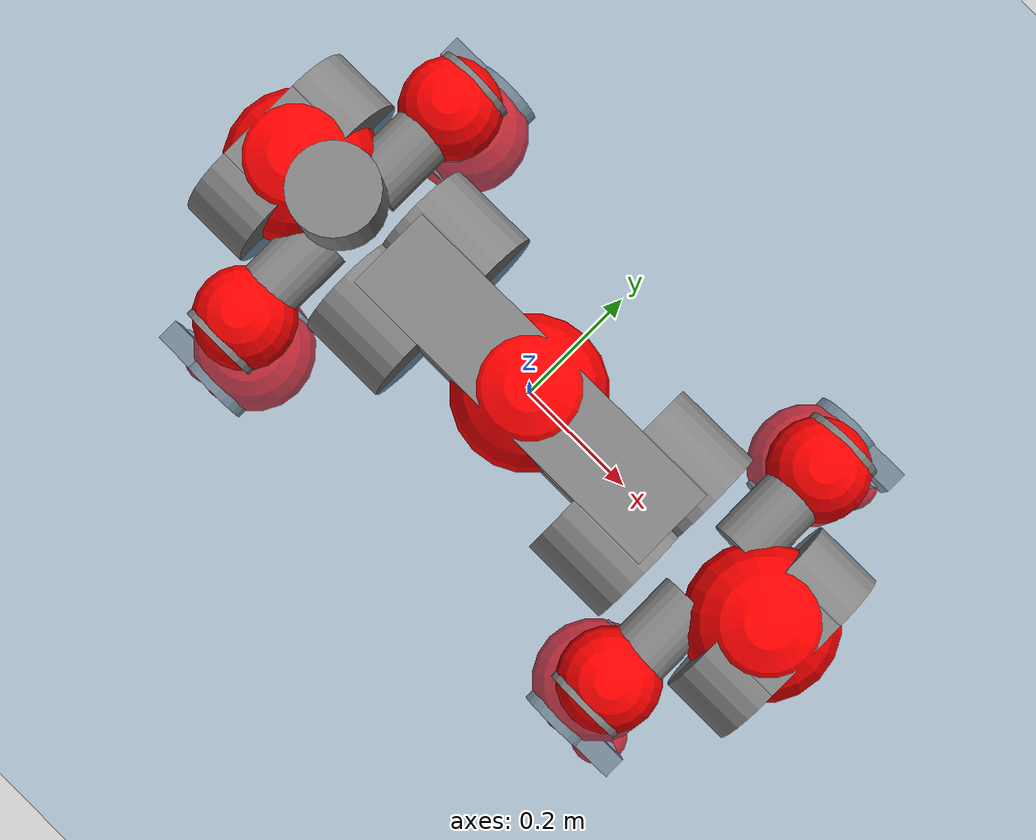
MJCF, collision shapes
<mujoco model="anymal_c">
  <compiler angle="radian" assetdir="assets" balanceinertia="true" inertiafromgeom="false"/>

  <option timestep="0.005" density="1.2" viscosity="2e-05"/>

  <size nkey="1"/>

  <visual>
    <quality shadowsize="8192"/>
    <map shadowclip="0.5"/>
  </visual>

  <default>
    <default class="/">
      <material specular="0" shininess="0.25"/>
      <geom contype="0" conaffinity="0" group="1" solref="-1000 -80"/>
      <site size="0.01 0.005 0.005" group="5"/>
      <general forcelimited="true" forcerange="-80 80" biastype="affine" gainprm="80" biasprm="0 -80 -2"/>
      <default class="anymal_c">
        <joint armature="0.01" damping="0.01" frictionloss="0.1"/>
        <default class="visual">
          <geom type="mesh" group="2"/>
          <default class="visual_zflip"/>
        </default>
        <default class="collision">
          <geom type="cylinder" group="3"/>
          <default class="foot">
            <geom size="0.03 0 0" type="sphere" condim="6" priority="1" friction="0.8 0.02 0.01" solimp="0.015 1 0.03"/>
          </default>
        </default>
      </default>
      <default class="reward_collision_sphere">
        <geom group="5" rgba="1 0 0 1"/>
      </default>
    </default>
  </default>

  <asset>
    <texture type="skybox" colorspace="auto" name="//unnamed_texture_0" builtin="gradient" rgb1="0.95 0.95 0.95" rgb2="0.95 0.95 0.95" width="100" height="600"/>
    <texture type="2d" colorspace="auto" name="texplane" builtin="checker" rgb1="0.345 0.575 0.748" rgb2="0.345 0.575 0.748" markrgb="1 1 1" width="512" height="512"/>
    <texture type="2d" colorspace="linear" name="base" file="base.png"/>
    <texture type="2d" colorspace="linear" name="top_shell" file="top_shell.png"/>
    <texture type="2d" colorspace="linear" name="bottom_shell" file="bottom_shell.png"/>
    <texture type="2d" colorspace="linear" name="remote" file="remote.png"/>
    <texture type="2d" colorspace="linear" name="hatch" file="hatch.png"/>
    <texture type="2d" colorspace="linear" name="handle" file="handle.png"/>
    <texture type="2d" colorspace="linear" name="face" file="face.png"/>
    <texture type="2d" colorspace="linear" name="battery" file="battery.png"/>
    <texture type="2d" colorspace="linear" name="lidar_cage" file="lidar_cage.png"/>
    <texture type="2d" colorspace="linear" name="depth_camera" file="depth_camera.png"/>
    <texture type="2d" colorspace="linear" name="wide_angle_camera" file="wide_angle_camera.png"/>
    <texture type="2d" colorspace="linear" name="lidar" file="lidar.png"/>
    <texture type="2d" colorspace="linear" name="drive" file="drive.png"/>
    <texture type="2d" colorspace="linear" name="hip_l" file="hip_l.png"/>
    <texture type="2d" colorspace="linear" name="shank_l" file="shank_l.png"/>
    <texture type="2d" colorspace="linear" name="foot" file="foot.png"/>
    <texture type="2d" colorspace="linear" name="thigh" file="thigh.png"/>
    <texture type="2d" colorspace="linear" name="shank_r" file="shank_r.png"/>
    <texture type="2d" colorspace="linear" name="hip_r" file="hip_r.png"/>
    <material name="MatPlane" class="/" texture="texplane" texuniform="true" texrepeat="2 2" specular="0.9" shininess="0.5"/>
    <material name="black_plastic" class="/" rgba="0.007 0.007 0.007 1"/>
    <material name="green" class="/" rgba="0.052 0.178 0.033 1"/>
    <material name="red" class="/" rgba="0.178 0.006 0.005 1"/>
    <material name="yellow" class="/" rgba="0.178 0.119 0.006 1"/>
    <material name="lwl" class="/" rgba="0.8 0.8 0.8 1"/>
    <material name="base" class="/" texture="base"/>
    <material name="top_shell" class="/" texture="top_shell"/>
    <material name="bottom_shell" class="/" texture="bottom_shell"/>
    <material name="hip_l" class="/" texture="hip_l"/>
    <material name="thigh" class="/" texture="thigh"/>
    <material name="shank_l" class="/" texture="shank_l"/>
    <material name="foot" class="/" texture="foot"/>
    <material name="hip_r" class="/" texture="hip_r"/>
    <material name="shank" class="/" texture="shank_r"/>
    <material name="hatch" class="/" texture="hatch"/>
    <material name="remote" class="/" texture="remote"/>
    <material name="handle" class="/" texture="handle"/>
    <material name="face" class="/" texture="face"/>
    <material name="depth_camera" class="/" texture="depth_camera"/>
    <material name="wide_angle_camera" class="/" texture="wide_angle_camera"/>
    <material name="battery" class="/" texture="battery"/>
    <material name="lidar_cage" class="/" texture="lidar_cage"/>
    <material name="lidar" class="/" texture="lidar"/>
    <material name="drive" class="/" texture="drive"/>
    <mesh name="base_0" class="/" file="base_0.obj"/>
    <mesh name="base_1" class="/" file="base_1.obj"/>
    <mesh name="base_2" class="/" file="base_2.obj"/>
    <mesh name="base_3" class="/" file="base_3.obj"/>
    <mesh name="base_4" class="/" file="base_4.obj"/>
    <mesh name="base_5" class="/" file="base_5.obj"/>
    <mesh name="top_shell" class="/" file="top_shell.obj"/>
    <mesh name="bottom_shell" class="/" file="bottom_shell.obj"/>
    <mesh name="remote" class="/" file="remote.obj"/>
    <mesh name="handle" class="/" file="handle.obj"/>
    <mesh name="face" class="/" file="face.obj"/>
    <mesh name="wide_angle_camera" class="/" file="wide_angle_camera.obj"/>
    <mesh name="depth_camera" class="/" file="depth_camera.obj"/>
    <mesh name="battery" class="/" file="battery.obj"/>
    <mesh name="lidar_cage" class="/" file="lidar_cage.obj"/>
    <mesh name="lidar" class="/" file="lidar.obj"/>
    <mesh name="drive" class="/" file="drive.obj"/>
    <mesh name="hip_l" class="/" file="hip_l.obj"/>
    <mesh name="thigh" class="/" file="thigh.obj"/>
    <mesh name="shank_l" class="/" file="shank_l.obj"/>
    <mesh name="foot" class="/" file="foot.obj"/>
    <mesh name="hip_r" class="/" file="hip_r.obj"/>
    <mesh name="hatch" class="/" file="hatch.obj"/>
    <mesh name="shank_r" class="/" file="shank_r.obj"/>
  </asset>

  <worldbody>
    <geom name="floor" class="/" size="100 100 0.125" type="plane" group="0" material="MatPlane"/>
    <light name="toplight_shadow" class="/" pos="0 0 5" dir="0.0990148 0.0990148 -0.990148" type="directional" ambient="0.04 0.04 0.04" diffuse="0.55 0.55 0.55" specular="0.12 0.12 0.12"/>
    <light name="toplight_fill" class="/" pos="0 0 5" dir="0.0990148 0.0990148 -0.990148" type="directional" castshadow="false" ambient="0.04 0.04 0.04" diffuse="0.3 0.3 0.3" specular="0.08 0.08 0.08"/>
    <body name="trunk" childclass="anymal_c" pos="0.000318018 -0.000134445 0.00124348" quat="1 0.000171375 -5.94135e-05 -0.000163461">
      <inertial pos="0.00378224 -0.00462742 0.0433672" quat="0.501222 0.499861 0.499895 0.49902" mass="20.8863" diaginertia="0.957796 0.871578 0.13174"/>
      <joint name="//unnamed_joint_0" type="free" armature="0" damping="0" frictionloss="0"/>
      <geom name="//unnamed_geom_1" class="visual" material="green" mesh="base_0"/>
      <geom name="//unnamed_geom_2" class="visual" material="yellow" mesh="base_1"/>
      <geom name="//unnamed_geom_3" class="visual" material="red" mesh="base_2"/>
      <geom name="//unnamed_geom_4" class="visual" material="black_plastic" mesh="base_3"/>
      <geom name="//unnamed_geom_5" class="visual" material="lwl" mesh="base_4"/>
      <geom name="//unnamed_geom_6" class="visual" material="base" mesh="base_5"/>
      <geom name="trunk_1" class="collision" size="0.296946 0.0716767 0.0921557" type="box"/>
      <geom name="trunk_2" class="collision" size="0.0921557 0.0742365" pos="0.238329 0.0747212 0" quat="0.707107 0 0.707107 0"/>
      <geom name="trunk_3" class="collision" size="0.0921557 0.0742365" pos="-0.238329 0.0747212 0" quat="0.707107 0 0.707107 0"/>
      <geom name="trunk_4" class="collision" size="0.0921557 0.0742365" pos="0.238329 -0.0747212 0" quat="0.707107 0 0.707107 0"/>
      <geom name="trunk_5" class="collision" size="0.0921557 0.0742365" pos="-0.238329 -0.0747212 0" quat="0.707107 0 0.707107 0"/>
      <geom name="//unnamed_geom_12" class="visual" material="top_shell" mesh="top_shell"/>
      <geom name="//unnamed_geom_13" class="visual" material="bottom_shell" mesh="bottom_shell"/>
      <geom name="//unnamed_geom_14" class="visual" material="remote" mesh="remote"/>
      <geom name="//unnamed_geom_15" class="visual" material="handle" mesh="handle"/>
      <geom name="//unnamed_geom_16" class="visual" pos="0.454194 0 0" quat="1 0 0 0" material="face" mesh="face"/>
      <geom name="trunk_6" class="collision" size="0.0563174 0.0716767 0.0921557" pos="0.514461 0 0" type="box"/>
      <geom name="//unnamed_geom_18" class="collision" size="0.0921557 0.0563174" pos="0.514461 0.0747212 0" quat="0.707107 0 0.707107 0"/>
      <geom name="//unnamed_geom_19" class="collision" size="0.0921557 0.0563174" pos="0.514461 -0.0747212 0" quat="0.707107 0 0.707107 0"/>
      <geom name="//unnamed_geom_20" class="visual" pos="0.505852 0 -0.0251104" quat="0.965926 0 0.258819 0" material="depth_camera" mesh="depth_camera"/>
      <geom name="//unnamed_geom_21" class="visual" pos="0.562127 0 0.0136025" material="wide_angle_camera" mesh="wide_angle_camera"/>
      <geom name="//unnamed_geom_22" class="visual_zflip" pos="-0.454194 0 0" quat="0 0 0 1" material="face" mesh="face"/>
      <geom name="trunk_7" class="collision" size="0.0563174 0.0716767 0.0921557" pos="-0.514461 0 0" quat="0 0 0 1" type="box"/>
      <geom name="//unnamed_geom_24" class="collision" size="0.0921557 0.0563174" pos="-0.514461 -0.0747212 0" quat="0 -0.707107 0 0.707107"/>
      <geom name="//unnamed_geom_25" class="collision" size="0.0921557 0.0563174" pos="-0.514461 0.0747212 0" quat="0 -0.707107 0 0.707107"/>
      <geom name="//unnamed_geom_26" class="visual" pos="-0.505852 0 -0.0251104" quat="0 -0.258819 0 0.965926" material="depth_camera" mesh="depth_camera"/>
      <geom name="//unnamed_geom_27" class="visual_zflip" pos="-0.562127 0 0.0136025" quat="0 0 0 1" material="wide_angle_camera" mesh="wide_angle_camera"/>
      <geom name="//unnamed_geom_28" class="visual" material="battery" mesh="battery"/>
      <geom name="//unnamed_geom_29" class="visual" pos="0 0.0812375 0.0278183" quat="0.683013 -0.183013 0.183013 0.683013" material="depth_camera" mesh="depth_camera"/>
      <geom name="//unnamed_geom_30" class="visual" pos="0 -0.0812375 0.0278183" quat="0.683013 0.183013 0.183013 -0.683013" material="depth_camera" mesh="depth_camera"/>
      <geom name="//unnamed_geom_31" class="visual" pos="-0.398858 0 0.0667856" quat="1 0 0 0" material="lidar_cage" mesh="lidar_cage"/>
      <geom name="trunk_8" class="collision" size="0.0716767 0.0614371" pos="-0.398858 0 0.121304"/>
      <geom name="//unnamed_geom_33" class="visual" pos="-0.398858 -1.11257e-05 0.12921" quat="0.707107 0 0 -0.707107" material="lidar" mesh="lidar"/>
      <geom name="//unnamed_geom_34" class="visual" pos="0.32862 0.110958 2.73928e-09" quat="0.258819 0.965926 0 0" material="drive" mesh="drive"/>
      <geom name="//unnamed_geom_35" class="visual" pos="0.32862 -0.110958 -2.73928e-09" quat="0.258819 -0.965926 0 0" material="drive" mesh="drive"/>
      <geom name="//unnamed_geom_36" class="visual" pos="-0.32862 0.110958 -2.73928e-09" quat="0 0 0.965926 -0.258819" material="drive" mesh="drive"/>
      <geom name="//unnamed_geom_37" class="visual" pos="-0.32862 -0.110958 2.73928e-09" quat="0 0 -0.965926 -0.258819" material="drive" mesh="drive"/>
      <geom name="//unnamed_geom_38" class="visual" pos="0.127109 0 0.0663313" quat="1 0 0 0" material="hatch" mesh="hatch"/>
      <geom name="//unnamed_geom_39" class="reward_collision_sphere" size="0.122874"/>
      <geom name="//unnamed_geom_40" class="reward_collision_sphere" size="0.122874" pos="0.493094 0 0"/>
      <geom name="//unnamed_geom_41" class="reward_collision_sphere" size="0.122874" pos="-0.493094 0 0"/>
      <site name="imu" pos="0.282331 0.00708188 0.0508404" size="0.0102395"/>
      <camera name="track" pos="0 -2.13489 0" quat="0.707107 0.707107 0 0" mode="trackcom"/>
      <camera name="ego_camera" pos="0.493094 0 -0.0363459" quat="-0.5 -0.5 0.5 0.5"/>
      <body name="LF_HIP" pos="0.32883 0.111471 0.00233637" quat="0.259229 0.965815 -0.000673075 0.00096513">
        <inertial pos="0.0652677 -0.0163028 -0.00808154" quat="-0.135513 0.713997 -0.138621 0.672777" mass="2.81666" diaginertia="0.00902497 0.00658231 0.00198558"/>
        <joint name="LF_HAA" pos="0 0 0" axis="0.999993 0.00314591 0.00184514" stiffness="3.77681e-05" range="-0.745927 0.480553" armature="0.0101298" damping="0.0101168" frictionloss="0.116391"/>
        <geom name="//unnamed_geom_42" class="visual" pos="0 0.000161139 -2.6467e-05" quat="0.258819 -0.965926 0 0" material="hip_l" mesh="hip_l"/>
        <geom name="//unnamed_geom_43" class="visual" pos="0.0656363 -0.079103 -0.0444956" quat="0.183013 -0.683013 0.683013 0.183013" material="drive" mesh="drive"/>
        <geom name="//unnamed_geom_44" class="collision" size="0.0511976 0.0716767" pos="0.0656363 -0.0127664 -0.00627421" quat="-0.353553 -0.612372 0.612372 -0.353553"/>
        <body name="LF_THIGH" pos="0.0659383 -0.0802355 -0.0372982" quat="0.182572 -0.682838 0.683245 0.183238">
          <inertial pos="0.0336109 0.000821243 -0.223685" quat="0.993129 -0.00376791 -0.0781323 0.0870409" mass="3.54609" diaginertia="0.0471838 0.0421542 0.00288739"/>
          <joint name="LF_HFE" pos="0 0 0" axis="0.999988 -0.00170622 0.00454259" range="-3.12804 3.16606" armature="0.0113099" damping="0.00941962" frictionloss="0.111982"/>
          <geom name="//unnamed_geom_45" class="visual" pos="0.000563432 8.87836e-07 0" quat="0.707107 0 0 -0.707107" material="thigh" mesh="thigh"/>
          <geom name="//unnamed_geom_46" class="collision" size="0.0665569 0.0409581" pos="0.0438306 0 0" quat="0.5 0.5 -0.5 -0.5"/>
          <geom name="//unnamed_geom_47" class="collision" size="0.0383982 0.0307186 0.144699" pos="0.0328729 0 -0.128405" quat="0.707107 0 0 -0.707107" type="box"/>
          <geom name="//unnamed_geom_48" class="visual" pos="0.109905 0 -0.258965" quat="1 0 0 0" material="drive" mesh="drive"/>
          <geom name="//unnamed_geom_49" class="collision" size="0.0511976 0.0716767" pos="0.0332017 0 -0.258965" quat="0.707107 0 0.707107 0"/>
          <geom name="//unnamed_geom_50" class="reward_collision_sphere" size="0.0819162" pos="0.0273941 0 0"/>
          <body name="LF_SHANK" pos="0.108767 -0.00103238 -0.260641" quat="0.999998 0.00164951 -0.000533422 -0.00116023">
            <inertial pos="0.0046054 -0.0651551 -0.0726145" quat="0.992958 -0.11602 -0.00115168 -0.0239452" mass="0.629851" diaginertia="0.0160014 0.0132354 0.000719725"/>
            <joint name="LF_KFE" pos="0 0 0" axis="0.999945 0.00415544 -0.00963218" range="-3.09726 3.09208" armature="0.00964422" damping="0" frictionloss="0.108886"/>
            <geom name="//unnamed_geom_51" class="visual" pos="0.000183723 0.000979619 0" quat="0.707107 0 0 -0.707107" material="shank_l" mesh="shank_l"/>
            <geom name="LF_kfe_act" class="collision" size="0.0614371 0.020479" pos="0.0219153 0 0" quat="0.5 0.5 -0.5 -0.5"/>
            <geom name="//unnamed_geom_53" class="collision" size="0.0588762 0.0345584 0.0194551" pos="0.0219153 -0.061377 0" quat="0.5 0.5 -0.5 -0.5" type="box"/>
            <geom name="//unnamed_geom_54" class="visual" pos="0.0142997 -0.0935661 -0.307096" quat="0.382683 0 0 -0.92388" material="foot" mesh="foot"/>
            <geom name="LF_calf" class="collision" size="0.0179192 0.144635" pos="0.0142997 -0.0938818 -0.153548" quat="0.707107 0 0 -0.707107"/>
            <geom name="LF_foot" class="foot" size="0.0278622" pos="0.0142997 -0.0938818 -0.286651" quat="0.707107 0 0 -0.707107"/>
            <geom name="//unnamed_geom_57" class="reward_collision_sphere" size="0.102395" pos="-0.0547882 0 0"/>
            <geom name="//unnamed_geom_58" class="reward_collision_sphere" size="0.0511976" pos="0.0142997 -0.0938818 -0.286651"/>
            <site name="LF_foot" class="foot" pos="0.0142997 -0.0938818 -0.286651" quat="0.707107 0 0 -0.707107" size="0.0102395"/>
          </body>
        </body>
      </body>
      <body name="RF_HIP" pos="0.33084 -0.110824 2.67689e-05" quat="0.257712 -0.966222 -0.000449701 0.000268733">
        <inertial pos="0.0629503 0.0191145 -0.0100483" quat="0.137141 0.677949 0.125441 0.711225" mass="3.20723" diaginertia="0.00951004 0.00705802 0.00203093"/>
        <joint name="RF_HAA" pos="0 0 0" axis="0.999993 -0.00318208 0.00214171" stiffness="0.0022822" range="-0.530637 0.801639" armature="0.0102551" damping="0.0207955" frictionloss="0.104839"/>
        <geom name="//unnamed_geom_59" class="visual" pos="0 -0.000161138 -2.64669e-05" quat="0.258819 0.965926 0 0" material="hip_r" mesh="hip_r"/>
        <geom name="//unnamed_geom_60" class="visual" pos="0.0656363 0.079103 -0.0444956" quat="0.183013 0.683013 0.683013 -0.183013" material="drive" mesh="drive"/>
        <geom name="//unnamed_geom_61" class="collision" size="0.0511976 0.0716767" pos="0.0656363 0.0127664 -0.00627421" quat="-0.353553 0.612372 0.612372 0.353553"/>
        <body name="RF_THIGH" pos="0.0602421 0.0775307 -0.0372559" quat="0.183666 0.683306 0.682859 -0.181832">
          <inertial pos="0.0342341 -0.00231225 -0.223239" quat="0.992713 -0.00764436 -0.0787211 0.0909183" mass="3.03049" diaginertia="0.0466786 0.0378315 0.0024803"/>
          <joint name="RF_HFE" pos="0 0 0" axis="0.999756 0.0189907 -0.0112469" stiffness="0.00441309" range="-3.25826 3.222" armature="0.0103173" damping="0.0196709" frictionloss="0.0899638"/>
          <geom name="//unnamed_geom_62" class="visual" pos="0.000563432 8.87836e-07 0" quat="0.707107 0 0 -0.707107" material="thigh" mesh="thigh"/>
          <geom name="//unnamed_geom_63" class="collision" size="0.0665569 0.0409581" pos="0.0438306 0 0" quat="0.5 0.5 0.5 0.5"/>
          <geom name="//unnamed_geom_64" class="collision" size="0.0383982 0.0307186 0.144699" pos="0.0328729 0 -0.128405" quat="0.707107 0 0 0.707107" type="box"/>
          <geom name="//unnamed_geom_65" class="visual" pos="0.109905 0 -0.258965" quat="1 0 0 0" material="drive" mesh="drive"/>
          <geom name="//unnamed_geom_66" class="collision" size="0.0511976 0.0716767" pos="0.0332017 0 -0.258965" quat="0.707107 0 0.707107 0"/>
          <geom name="//unnamed_geom_67" class="reward_collision_sphere" size="0.0819162" pos="0.0273941 0 0"/>
          <body name="RF_SHANK" pos="0.105387 0.00286865 -0.258477" quat="0.999999 -0.000155335 -0.000867753 0.00076664">
            <inertial pos="0.00439885 0.062972 -0.0785124" quat="0.992287 0.119743 -0.0103563 0.0303293" mass="0.67424" diaginertia="0.0158946 0.0126276 0.000684249"/>
            <joint name="RF_KFE" pos="0 0 0" axis="0.999545 0.00544535 0.029684" range="-3.09183 3.19354" armature="0.00996249" damping="0.0209495" frictionloss="0.132655"/>
            <geom name="//unnamed_geom_68" class="visual" pos="0.000183722 -0.000979617 0" quat="0.707107 0 0 0.707107" material="shank" mesh="shank_r"/>
            <geom name="RF_kfe_act" class="collision" size="0.0614371 0.020479" pos="0.0219153 0 0" quat="0.5 0.5 0.5 0.5"/>
            <geom name="//unnamed_geom_70" class="collision" size="0.0588762 0.0345584 0.0194551" pos="0.0219153 0.061377 0" quat="0.5 0.5 0.5 0.5" type="box"/>
            <geom name="//unnamed_geom_71" class="visual" pos="0.0142998 0.0935661 -0.307096" quat="0.382683 0 0 0.92388" material="foot" mesh="foot"/>
            <geom name="RF_calf" class="collision" size="0.0179192 0.144635" pos="0.0142997 0.0938818 -0.153548" quat="0.707107 0 0 0.707107"/>
            <geom name="RF_foot" class="foot" size="0.0314606" pos="0.0142997 0.0938818 -0.286651" quat="0.707107 0 0 0.707107"/>
            <geom name="//unnamed_geom_74" class="reward_collision_sphere" size="0.102395" pos="-0.0547882 0 0"/>
            <geom name="//unnamed_geom_75" class="reward_collision_sphere" size="0.0511976" pos="0.0142997 0.0938818 -0.286651"/>
            <site name="RF_foot" class="foot" pos="0.0142997 0.0938818 -0.286651" quat="0.707107 0 0 0.707107" size="0.0102395"/>
          </body>
        </body>
      </body>
      <body name="LH_HIP" pos="-0.330459 0.10952 0.00225255" quat="-0.000771944 0.000137573 0.965858 -0.259072">
        <inertial pos="0.0613827 0.0191994 -0.00524174" quat="0.116702 0.665266 0.114585 0.728473" mass="3.20685" diaginertia="0.00945618 0.00674452 0.00200043"/>
        <joint name="LH_HAA" pos="0 0 0" axis="0.999977 0.00354941 -0.00586521" stiffness="0.00907581" range="-0.444579 0.703758" armature="0.00996899" damping="0.00981683" frictionloss="0.105779"/>
        <geom name="//unnamed_geom_76" class="visual" pos="0 -0.000161138 -2.64669e-05" quat="-0.258819 -0.965926 0 0" material="hip_r" mesh="hip_r"/>
        <geom name="//unnamed_geom_77" class="visual" pos="0.0656363 0.079103 -0.0444956" quat="0.183013 0.683013 0.683013 -0.183013" material="drive" mesh="drive"/>
        <geom name="//unnamed_geom_78" class="collision" size="0.0511976 0.0716767" pos="0.0656363 0.0127664 -0.00627421" quat="-0.353553 0.612372 0.612372 0.353553"/>
        <body name="LH_THIGH" pos="0.0653157 0.0804261 -0.0383377" quat="0.183111 0.683208 0.682799 -0.18298">
          <inertial pos="0.0318383 0.00114137 -0.223409" quat="0.993715 -0.00449364 -0.0764436 0.0816451" mass="3.21458" diaginertia="0.043869 0.039062 0.00248029"/>
          <joint name="LH_HFE" pos="0 0 0" axis="0.999998 0.000824679 0.00186359" stiffness="0.00097329" range="-3.13807 3.12371" armature="0.0101822" damping="0" frictionloss="0.102097"/>
          <geom name="//unnamed_geom_79" class="visual" pos="0.000563432 8.87836e-07 0" quat="0.707107 0 0 -0.707107" material="thigh" mesh="thigh"/>
          <geom name="//unnamed_geom_80" class="collision" size="0.0665569 0.0409581" pos="0.0438306 0 0" quat="0.5 0.5 -0.5 -0.5"/>
          <geom name="//unnamed_geom_81" class="collision" size="0.0383982 0.0307186 0.144699" pos="0.0328729 0 -0.128405" quat="0.707107 0 0 -0.707107" type="box"/>
          <geom name="//unnamed_geom_82" class="visual" pos="0.109905 0 -0.258965" quat="1 0 0 0" material="drive" mesh="drive"/>
          <geom name="//unnamed_geom_83" class="collision" size="0.0511976 0.0716767" pos="0.0332017 0 -0.258965" quat="0.707107 0 0.707107 0"/>
          <geom name="//unnamed_geom_84" class="reward_collision_sphere" size="0.0819162" pos="0.0273941 0 0"/>
          <body name="LH_SHANK" pos="0.108083 -0.00147111 -0.257998" quat="0.999999 0.00102758 0.000794287 -0.000104048">
            <inertial pos="0.00400274 0.0633176 -0.072388" quat="0.993043 0.11492 -0.000729658 0.0256602" mass="0.605642" diaginertia="0.0143589 0.0111857 0.000585784"/>
            <joint name="LH_KFE" pos="0 0 0" axis="0.999998 -0.00153447 0.00150649" range="-3.13297 3.27062" armature="0.0107812" damping="0" frictionloss="0.107061"/>
            <geom name="//unnamed_geom_85" class="visual" pos="0.000183722 -0.000979617 0" quat="-0.707107 0 0 -0.707107" material="shank" mesh="shank_r"/>
            <geom name="LH_kfe_act" class="collision" size="0.0614371 0.020479" pos="0.0219153 0 0" quat="0.5 0.5 -0.5 -0.5"/>
            <geom name="//unnamed_geom_87" class="collision" size="0.0588762 0.0345584 0.0194551" pos="0.0219153 0.061377 0" quat="0.5 0.5 -0.5 -0.5" type="box"/>
            <geom name="//unnamed_geom_88" class="visual" pos="0.0142998 0.0935661 -0.307096" quat="-0.382683 0 0 -0.92388" material="foot" mesh="foot"/>
            <geom name="LH_calf" class="collision" size="0.0179192 0.144635" pos="0.0142997 0.0938818 -0.153548" quat="0.707107 0 0 -0.707107"/>
            <geom name="LH_foot" class="foot" size="0.0363658" pos="0.0142997 0.0938818 -0.286651" quat="0.707107 0 0 -0.707107"/>
            <geom name="//unnamed_geom_91" class="reward_collision_sphere" size="0.102395" pos="-0.0547882 0 0"/>
            <geom name="//unnamed_geom_92" class="reward_collision_sphere" size="0.0511976" pos="0.0142997 0.0938818 -0.286651"/>
            <site name="LH_foot" class="foot" pos="0.0142997 0.0938818 -0.286651" quat="0.707107 0 0 -0.707107" size="0.0102395"/>
          </body>
        </body>
      </body>
      <body name="RH_HIP" pos="-0.327796 -0.11331 0.00353292" quat="-0.000431037 -0.00142691 -0.965788 -0.259328">
        <inertial pos="0.0645317 -0.0155024 -0.0088592" quat="-0.103487 0.719696 -0.123475 0.675339" mass="2.92173" diaginertia="0.00929 0.00679929 0.00205834"/>
        <joint name="RH_HAA" pos="0 0 0" axis="0.999944 0.0105421 0.000906919" range="-0.660273 0.541152" armature="0.0121113" damping="0.00972672" frictionloss="0.100638"/>
        <geom name="//unnamed_geom_93" class="visual" pos="0 0.000161139 -2.6467e-05" quat="-0.258819 0.965926 0 0" material="hip_l" mesh="hip_l"/>
        <geom name="//unnamed_geom_94" class="visual" pos="0.0656363 -0.079103 -0.0444956" quat="-0.183013 0.683013 -0.683013 -0.183013" material="drive" mesh="drive"/>
        <geom name="//unnamed_geom_95" class="collision" size="0.0511976 0.0716767" pos="0.0656363 -0.0127664 -0.00627421" quat="0.353553 0.612372 -0.612372 0.353553"/>
        <body name="RH_THIGH" pos="0.0632459 -0.0777794 -0.0331667" quat="-0.183374 0.682904 -0.682935 -0.183346">
          <inertial pos="0.03417 -0.00609478 -0.223018" quat="0.993519 0.00211429 -0.0733478 0.0868107" mass="3.58081" diaginertia="0.050689 0.0444951 0.00272622"/>
          <joint name="RH_HFE" pos="0 0 0" axis="0.999996 0.00102457 0.00253103" range="-3.11142 3.22459" armature="0.00692656" damping="0.00363167" frictionloss="0.113349"/>
          <geom name="//unnamed_geom_96" class="visual" pos="0.000563432 8.87836e-07 0" quat="0.707107 0 0 -0.707107" material="thigh" mesh="thigh"/>
          <geom name="//unnamed_geom_97" class="collision" size="0.0665569 0.0409581" pos="0.0438306 0 0" quat="0.5 0.5 0.5 0.5"/>
          <geom name="//unnamed_geom_98" class="collision" size="0.0383982 0.0307186 0.144699" pos="0.0328729 0 -0.128405" quat="0.707107 0 0 0.707107" type="box"/>
          <geom name="//unnamed_geom_99" class="visual" pos="0.109905 0 -0.258965" quat="1 0 0 0" material="drive" mesh="drive"/>
          <geom name="//unnamed_geom_100" class="collision" size="0.0511976 0.0716767" pos="0.0332017 0 -0.258965" quat="0.707107 0 0.707107 0"/>
          <geom name="//unnamed_geom_101" class="reward_collision_sphere" size="0.0819162" pos="0.0273941 0 0"/>
          <body name="RH_SHANK" pos="0.11323 0.00199507 -0.255637" quat="1 0.000397626 -0.000625715 -0.000186368">
            <inertial pos="0.00682994 -0.0648378 -0.072614" quat="0.994065 -0.102615 -0.021509 -0.0290185" mass="0.65584" diaginertia="0.0163865 0.0123372 0.000633844"/>
            <joint name="RH_KFE" pos="0 0 0" axis="0.999816 -0.0117576 -0.015174" range="-3.18407 3.06815" armature="0.00979607" damping="0.0106944" frictionloss="0.114128"/>
            <geom name="//unnamed_geom_102" class="visual" pos="0.000183723 0.000979619 0" quat="0.707107 0 0 -0.707107" material="shank_l" mesh="shank_l"/>
            <geom name="RH_kfe_act" class="collision" size="0.0614371 0.020479" pos="0.0219153 0 0" quat="0.5 0.5 0.5 0.5"/>
            <geom name="//unnamed_geom_104" class="collision" size="0.0588762 0.0345584 0.0194551" pos="0.0219153 -0.061377 0" quat="0.5 0.5 0.5 0.5" type="box"/>
            <geom name="//unnamed_geom_105" class="visual" pos="0.0142997 -0.0935661 -0.307096" quat="0.382683 0 0 -0.92388" material="foot" mesh="foot"/>
            <geom name="RH_calf" class="collision" size="0.0179192 0.144635" pos="0.0142997 -0.0938818 -0.153548" quat="0.707107 0 0 0.707107"/>
            <geom name="RH_foot" class="foot" size="0.037633" pos="0.0142997 -0.0938818 -0.286651" quat="0.707107 0 0 0.707107"/>
            <geom name="//unnamed_geom_108" class="reward_collision_sphere" size="0.102395" pos="-0.0547882 0 0"/>
            <geom name="//unnamed_geom_109" class="reward_collision_sphere" size="0.0511976" pos="0.0142997 -0.0938818 -0.286651"/>
            <site name="RH_foot" class="foot" pos="0.0142997 -0.0938818 -0.286651" quat="0.707107 0 0 0.707107" size="0.0102395"/>
          </body>
        </body>
      </body>
    </body>
  </worldbody>

  <contact>
    <pair class="/" geom1="floor" geom2="LF_foot" name="//unnamed_contact_0"/>
    <pair class="/" geom1="floor" geom2="RF_foot" name="//unnamed_contact_1"/>
    <pair class="/" geom1="floor" geom2="LH_foot" name="//unnamed_contact_2"/>
    <pair class="/" geom1="floor" geom2="RH_foot" name="//unnamed_contact_3"/>
  </contact>

  <actuator>
    <general name="LF_HAA" class="/" joint="LF_HAA" forcerange="-81.1803 81.1803" gainprm="73.2611" biasprm="0 -73.2611 -2.10517"/>
    <general name="LF_HFE" class="/" joint="LF_HFE" forcerange="-99.7385 99.7385" gainprm="73.2611" biasprm="0 -73.2611 -2.10517"/>
    <general name="LF_KFE" class="/" joint="LF_KFE" forcerange="-88.9573 88.9573" gainprm="73.2611" biasprm="0 -73.2611 -2.10517"/>
    <general name="RF_HAA" class="/" joint="RF_HAA" forcerange="-75.8053 75.8053" gainprm="73.2611" biasprm="0 -73.2611 -2.10517"/>
    <general name="RF_HFE" class="/" joint="RF_HFE" forcerange="-88.5716 88.5716" gainprm="73.2611" biasprm="0 -73.2611 -2.10517"/>
    <general name="RF_KFE" class="/" joint="RF_KFE" forcerange="-78.6639 78.6639" gainprm="73.2611" biasprm="0 -73.2611 -2.10517"/>
    <general name="LH_HAA" class="/" joint="LH_HAA" forcerange="-79.8598 79.8598" gainprm="73.2611" biasprm="0 -73.2611 -2.10517"/>
    <general name="LH_HFE" class="/" joint="LH_HFE" forcerange="-81.3374 81.3374" gainprm="73.2611" biasprm="0 -73.2611 -2.10517"/>
    <general name="LH_KFE" class="/" joint="LH_KFE" forcerange="-80.2074 80.2074" gainprm="73.2611" biasprm="0 -73.2611 -2.10517"/>
    <general name="RH_HAA" class="/" joint="RH_HAA" forcerange="-99.0485 99.0485" gainprm="73.2611" biasprm="0 -73.2611 -2.10517"/>
    <general name="RH_HFE" class="/" joint="RH_HFE" forcerange="-75.3196 75.3196" gainprm="73.2611" biasprm="0 -73.2611 -2.10517"/>
    <general name="RH_KFE" class="/" joint="RH_KFE" forcerange="-74.8536 74.8536" gainprm="73.2611" biasprm="0 -73.2611 -2.10517"/>
  </actuator>

  <sensor>
    <gyro site="imu" name="imu_angular_velocity"/>
    <velocimeter site="imu" name="imu_linear_velocity"/>
    <framelinvel objtype="site" objname="LF_foot" name="LF_foot_global_linear_velocity"/>
    <framelinvel objtype="site" objname="RF_foot" name="RF_foot_global_linear_velocity"/>
    <framelinvel objtype="site" objname="LH_foot" name="LH_foot_global_linear_velocity"/>
    <framelinvel objtype="site" objname="RH_foot" name="RH_foot_global_linear_velocity"/>
  </sensor>

  <keyframe>
    <key name="home" qpos="0 0 0.55 1 0 0 0 0 0.4 -0.8 0 -0.4 0.8 0 -0.4 0.8 0 0.4 -0.8"/>
  </keyframe>
</mujoco>
